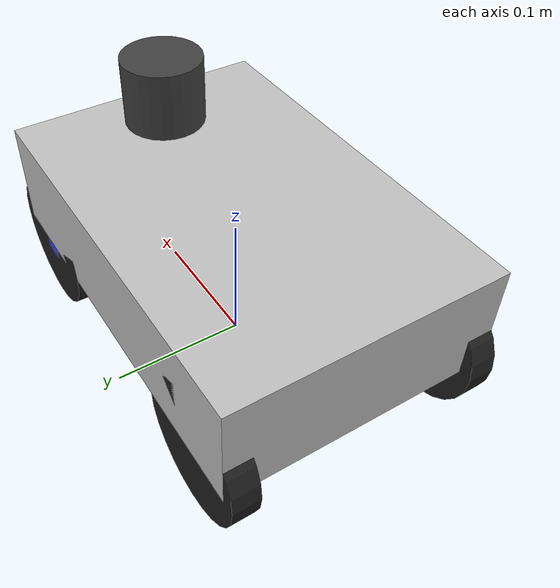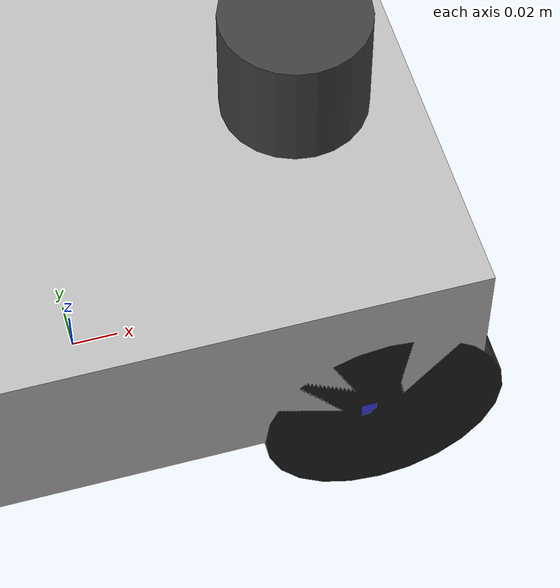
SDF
<sdf version='1.9'>
  <model name='minidog'>
    <link name='base_footprint'>
      <inertial>
        <pose>0.006250000000000001 0 0.09437500000000001 0 0 0</pose>
        <mass>3.2000000000000002</mass>
        <inertia>
          <ixx>0.01260541666666665</ixx>
          <ixy>0</ixy>
          <ixz>-0.0013125000000000001</ixz>
          <iyy>0.02698374999999999</iyy>
          <iyz>0</iyz>
          <izz>0.034461666666666668</izz>
        </inertia>
      </inertial>
      <collision name='base_footprint_fixed_joint_lump__base_link_collision'>
        <pose>0 0 0.09 0 0 0</pose>
        <geometry>
          <box>
            <size>0.3 0.2 0.08</size>
          </box>
        </geometry>
      </collision>
      <collision name='base_footprint_fixed_joint_lump__lidar_link_collision_1'>
        <pose>0.1 0 0.16 0 0 0</pose>
        <geometry>
          <cylinder>
            <length>0.050000000000000003</length>
            <radius>0.029999999999999999</radius>
          </cylinder>
        </geometry>
        <surface>
          <contact>
            <ode/>
          </contact>
          <friction>
            <ode/>
          </friction>
        </surface>
      </collision>
      <visual name='base_footprint_fixed_joint_lump__base_link_visual'>
        <pose>0 0 0.09 0 0 0</pose>
        <geometry>
          <box>
            <size>0.3 0.2 0.08</size>
          </box>
        </geometry>
        <material>
          <diffuse>0.75 0.75 0.75 1</diffuse>
          <ambient>0.75 0.75 0.75 1</ambient>
        </material>
      </visual>
      <visual name='base_footprint_fixed_joint_lump__lidar_link_visual_1'>
        <pose>0.1 0 0.16 0 0 0</pose>
        <geometry>
          <cylinder>
            <length>0.050000000000000003</length>
            <radius>0.029999999999999999</radius>
          </cylinder>
        </geometry>
        <material>
          <diffuse>0.25 0.25 0.25 1</diffuse>
          <ambient>0.25 0.25 0.25 1</ambient>
        </material>
      </visual>
      <sensor name='ouster' type='gpu_lidar'>
        <topic>/minidog/ouster/points</topic>
        <update_rate>10</update_rate>
        <lidar>
          <scan>
            <horizontal>
              <samples>360</samples>
              <resolution>1</resolution>
              <min_angle>-3.1415899999999999</min_angle>
              <max_angle>3.1415899999999999</max_angle>
            </horizontal>
            <vertical>
              <samples>16</samples>
              <resolution>1</resolution>
              <min_angle>-0.261799</min_angle>
              <max_angle>0.261799</max_angle>
            </vertical>
          </scan>
          <range>
            <min>0.10000000000000001</min>
            <max>20</max>
            <resolution>0.01</resolution>
          </range>
        </lidar>
        <visualize>true</visualize>
        <pose>0.1 0 0.16 0 -0 0</pose>
        <alwaysOn>1</alwaysOn>
      </sensor>
    </link>
    <joint name='front_left_steer_joint' type='revolute'>
      <pose relative_to='base_footprint'>0.11 0.09 0.05 0 0 0</pose>
      <parent>base_footprint</parent>
      <child>front_left_steer_link</child>
      <axis>
        <xyz>0 0 1</xyz>
        <limit>
          <lower>-0.59999999999999998</lower>
          <upper>0.59999999999999998</upper>
          <effort>5</effort>
          <velocity>2</velocity>
        </limit>
        <dynamics>
          <spring_reference>0</spring_reference>
          <spring_stiffness>0</spring_stiffness>
        </dynamics>
      </axis>
    </joint>
    <link name='front_left_steer_link'>
      <pose relative_to='front_left_steer_joint'>0 0 0 0 0 0</pose>
      <inertial>
        <pose>0 0 0 0 0 0</pose>
        <mass>0.050000000000000003</mass>
        <inertia>
          <ixx>3.3333333333333329e-06</ixx>
          <ixy>0</ixy>
          <ixz>0</ixz>
          <iyy>3.3333333333333329e-06</iyy>
          <iyz>0</iyz>
          <izz>3.3333333333333329e-06</izz>
        </inertia>
      </inertial>
      <collision name='front_left_steer_link_collision'>
        <pose>0 0 0 0 0 0</pose>
        <geometry>
          <box>
            <size>0.02 0.02 0.02</size>
          </box>
        </geometry>
      </collision>
      <visual name='front_left_steer_link_visual'>
        <pose>0 0 0 0 0 0</pose>
        <geometry>
          <box>
            <size>0.02 0.02 0.02</size>
          </box>
        </geometry>
        <material>
          <diffuse>0.25 0.25 1 1</diffuse>
          <ambient>0.25 0.25 1 1</ambient>
        </material>
      </visual>
    </link>
    <joint name='front_left_wheel_joint' type='revolute'>
      <pose relative_to='front_left_steer_link'>0 0 0 0 0 0</pose>
      <parent>front_left_steer_link</parent>
      <child>front_left_wheel_link</child>
      <axis>
        <xyz>0 1 0</xyz>
        <limit>
          <lower>-10000000000000000</lower>
          <upper>10000000000000000</upper>
        </limit>
        <dynamics>
          <spring_reference>0</spring_reference>
          <spring_stiffness>0</spring_stiffness>
        </dynamics>
      </axis>
    </joint>
    <link name='front_left_wheel_link'>
      <pose relative_to='front_left_wheel_joint'>0 0 0 0 0 0</pose>
      <inertial>
        <pose>0 0 0 0 0 0</pose>
        <mass>0.25</mass>
        <inertia>
          <ixx>0.00016458333333333331</ixx>
          <ixy>0</ixy>
          <ixz>0</ixz>
          <iyy>0.00031250000000000011</iyy>
          <iyz>0</iyz>
          <izz>0.00016458333333333331</izz>
        </inertia>
      </inertial>
      <collision name='front_left_wheel_link_collision'>
        <pose>0 0 0 1.570796326794896 0 0</pose>
        <geometry>
          <cylinder>
            <length>0.02</length>
            <radius>0.050000000000000003</radius>
          </cylinder>
        </geometry>
      </collision>
      <visual name='front_left_wheel_link_visual'>
        <pose>0 0 0 1.570796326794896 0 0</pose>
        <geometry>
          <cylinder>
            <length>0.02</length>
            <radius>0.050000000000000003</radius>
          </cylinder>
        </geometry>
        <material>
          <diffuse>0.125 0.125 0.125 1</diffuse>
          <ambient>0.125 0.125 0.125 1</ambient>
        </material>
      </visual>
    </link>
    <joint name='front_right_steer_joint' type='revolute'>
      <pose relative_to='base_footprint'>0.11 -0.09 0.05 0 0 0</pose>
      <parent>base_footprint</parent>
      <child>front_right_steer_link</child>
      <axis>
        <xyz>0 0 1</xyz>
        <limit>
          <lower>-0.59999999999999998</lower>
          <upper>0.59999999999999998</upper>
          <effort>5</effort>
          <velocity>2</velocity>
        </limit>
        <dynamics>
          <spring_reference>0</spring_reference>
          <spring_stiffness>0</spring_stiffness>
        </dynamics>
      </axis>
    </joint>
    <link name='front_right_steer_link'>
      <pose relative_to='front_right_steer_joint'>0 0 0 0 0 0</pose>
      <inertial>
        <pose>0 0 0 0 0 0</pose>
        <mass>0.050000000000000003</mass>
        <inertia>
          <ixx>3.3333333333333329e-06</ixx>
          <ixy>0</ixy>
          <ixz>0</ixz>
          <iyy>3.3333333333333329e-06</iyy>
          <iyz>0</iyz>
          <izz>3.3333333333333329e-06</izz>
        </inertia>
      </inertial>
      <collision name='front_right_steer_link_collision'>
        <pose>0 0 0 0 0 0</pose>
        <geometry>
          <box>
            <size>0.02 0.02 0.02</size>
          </box>
        </geometry>
      </collision>
      <visual name='front_right_steer_link_visual'>
        <pose>0 0 0 0 0 0</pose>
        <geometry>
          <box>
            <size>0.02 0.02 0.02</size>
          </box>
        </geometry>
        <material>
          <diffuse>0.25 0.25 1 1</diffuse>
          <ambient>0.25 0.25 1 1</ambient>
        </material>
      </visual>
    </link>
    <joint name='front_right_wheel_joint' type='revolute'>
      <pose relative_to='front_right_steer_link'>0 0 0 0 0 0</pose>
      <parent>front_right_steer_link</parent>
      <child>front_right_wheel_link</child>
      <axis>
        <xyz>0 1 0</xyz>
        <limit>
          <lower>-10000000000000000</lower>
          <upper>10000000000000000</upper>
        </limit>
        <dynamics>
          <spring_reference>0</spring_reference>
          <spring_stiffness>0</spring_stiffness>
        </dynamics>
      </axis>
    </joint>
    <link name='front_right_wheel_link'>
      <pose relative_to='front_right_wheel_joint'>0 0 0 0 0 0</pose>
      <inertial>
        <pose>0 0 0 0 0 0</pose>
        <mass>0.25</mass>
        <inertia>
          <ixx>0.00016458333333333331</ixx>
          <ixy>0</ixy>
          <ixz>0</ixz>
          <iyy>0.00031250000000000011</iyy>
          <iyz>0</iyz>
          <izz>0.00016458333333333331</izz>
        </inertia>
      </inertial>
      <collision name='front_right_wheel_link_collision'>
        <pose>0 0 0 1.570796326794896 0 0</pose>
        <geometry>
          <cylinder>
            <length>0.02</length>
            <radius>0.050000000000000003</radius>
          </cylinder>
        </geometry>
      </collision>
      <visual name='front_right_wheel_link_visual'>
        <pose>0 0 0 1.570796326794896 0 0</pose>
        <geometry>
          <cylinder>
            <length>0.02</length>
            <radius>0.050000000000000003</radius>
          </cylinder>
        </geometry>
        <material>
          <diffuse>0.125 0.125 0.125 1</diffuse>
          <ambient>0.125 0.125 0.125 1</ambient>
        </material>
      </visual>
    </link>
    <joint name='rear_left_wheel_joint' type='revolute'>
      <pose relative_to='base_footprint'>-0.11 0.09 0.05 0 0 0</pose>
      <parent>base_footprint</parent>
      <child>rear_left_wheel_link</child>
      <axis>
        <xyz>0 1 0</xyz>
        <limit>
          <lower>-10000000000000000</lower>
          <upper>10000000000000000</upper>
        </limit>
        <dynamics>
          <spring_reference>0</spring_reference>
          <spring_stiffness>0</spring_stiffness>
        </dynamics>
      </axis>
    </joint>
    <link name='rear_left_wheel_link'>
      <pose relative_to='rear_left_wheel_joint'>0 0 0 0 0 0</pose>
      <inertial>
        <pose>0 0 0 0 0 0</pose>
        <mass>0.25</mass>
        <inertia>
          <ixx>0.00016458333333333331</ixx>
          <ixy>0</ixy>
          <ixz>0</ixz>
          <iyy>0.00031250000000000011</iyy>
          <iyz>0</iyz>
          <izz>0.00016458333333333331</izz>
        </inertia>
      </inertial>
      <collision name='rear_left_wheel_link_collision'>
        <pose>0 0 0 1.570796326794896 0 0</pose>
        <geometry>
          <cylinder>
            <length>0.02</length>
            <radius>0.050000000000000003</radius>
          </cylinder>
        </geometry>
      </collision>
      <visual name='rear_left_wheel_link_visual'>
        <pose>0 0 0 1.570796326794896 0 0</pose>
        <geometry>
          <cylinder>
            <length>0.02</length>
            <radius>0.050000000000000003</radius>
          </cylinder>
        </geometry>
        <material>
          <diffuse>0.125 0.125 0.125 1</diffuse>
          <ambient>0.125 0.125 0.125 1</ambient>
        </material>
      </visual>
    </link>
    <joint name='rear_right_wheel_joint' type='revolute'>
      <pose relative_to='base_footprint'>-0.11 -0.09 0.05 0 0 0</pose>
      <parent>base_footprint</parent>
      <child>rear_right_wheel_link</child>
      <axis>
        <xyz>0 1 0</xyz>
        <limit>
          <lower>-10000000000000000</lower>
          <upper>10000000000000000</upper>
        </limit>
        <dynamics>
          <spring_reference>0</spring_reference>
          <spring_stiffness>0</spring_stiffness>
        </dynamics>
      </axis>
    </joint>
    <link name='rear_right_wheel_link'>
      <pose relative_to='rear_right_wheel_joint'>0 0 0 0 0 0</pose>
      <inertial>
        <pose>0 0 0 0 0 0</pose>
        <mass>0.25</mass>
        <inertia>
          <ixx>0.00016458333333333331</ixx>
          <ixy>0</ixy>
          <ixz>0</ixz>
          <iyy>0.00031250000000000011</iyy>
          <iyz>0</iyz>
          <izz>0.00016458333333333331</izz>
        </inertia>
      </inertial>
      <collision name='rear_right_wheel_link_collision'>
        <pose>0 0 0 1.570796326794896 0 0</pose>
        <geometry>
          <cylinder>
            <length>0.02</length>
            <radius>0.050000000000000003</radius>
          </cylinder>
        </geometry>
      </collision>
      <visual name='rear_right_wheel_link_visual'>
        <pose>0 0 0 1.570796326794896 0 0</pose>
        <geometry>
          <cylinder>
            <length>0.02</length>
            <radius>0.050000000000000003</radius>
          </cylinder>
        </geometry>
        <material>
          <diffuse>0.125 0.125 0.125 1</diffuse>
          <ambient>0.125 0.125 0.125 1</ambient>
        </material>
      </visual>
    </link>
    <plugin name='gz::sim::systems::AckermannSteering' filename='ignition-gazebo-ackermann-steering-system'>
      <left_joint>rear_left_wheel_joint</left_joint>
      <right_joint>rear_right_wheel_joint</right_joint>
      <left_steering_joint>front_left_steer_joint</left_steering_joint>
      <right_steering_joint>front_right_steer_joint</right_steering_joint>
      <kingpin_width>0.18</kingpin_width>
      <steering_limit>0.6</steering_limit>
      <wheel_base>0.22</wheel_base>
      <wheel_separation>0.18</wheel_separation>
      <wheel_radius>0.05</wheel_radius>
      <min_velocity>-2</min_velocity>
      <max_velocity>2</max_velocity>
      <min_acceleration>-3</min_acceleration>
      <max_acceleration>3</max_acceleration>
    </plugin>
    <plugin name='gz::sim::systems::JointStatePublisher' filename='ignition-gazebo-joint-state-publisher-system'/>
    <plugin name='ignition::gazebo::systems::OdometryPublisher' filename='ignition-gazebo-odometry-publisher-system'>
      <dimensions>3</dimensions>
      <odom_frame>odom</odom_frame>
      <robot_base_frame>base_footprint</robot_base_frame>
      <odom_publish_frequency>50</odom_publish_frequency>
    </plugin>
    <frame name='lidar_joint' attached_to='base_link'>
      <pose>0.1 0 0.07 0 -0 0</pose>
    </frame>
    <frame name='lidar_link' attached_to='lidar_joint'/>
    <frame name='base_footprint_joint' attached_to='base_footprint'>
      <pose>0 0 0.09 0 -0 0</pose>
    </frame>
    <frame name='base_link' attached_to='base_footprint_joint'/>
  </model>
</sdf>
